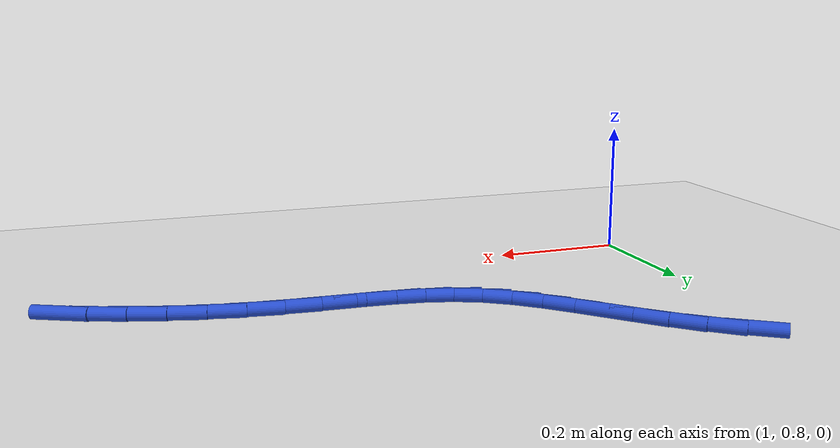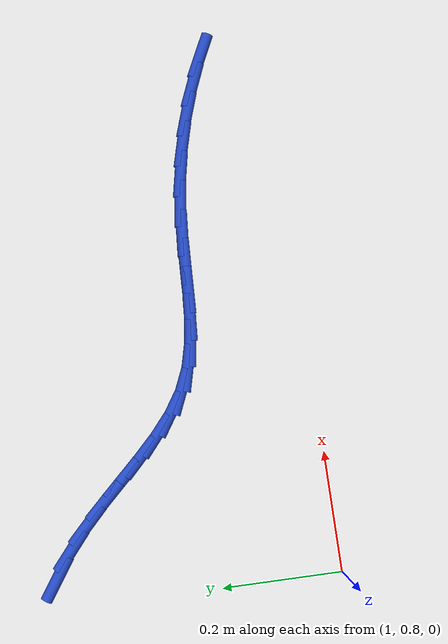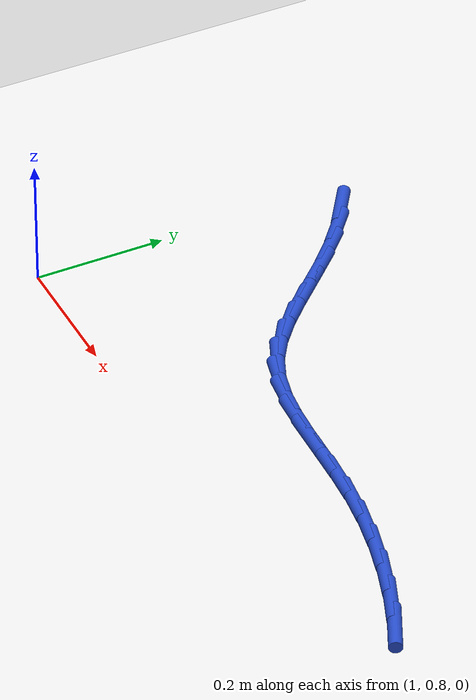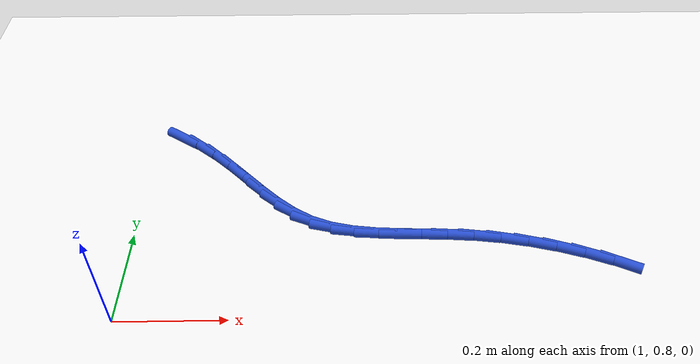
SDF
<sdf version="1.6">
 <world name="default">
  <model name="ground_plane">
   <static>1</static>
   <link name="link">
    <collision name="collision">
     <geometry><plane><normal>0 0 1</normal><size>100 100</size></plane></geometry>
     <surface><friction><ode><mu>100</mu><mu2>50</mu2></ode></friction></surface>
    </collision>
    <visual name="visual">
     <cast_shadows>0</cast_shadows>
     <geometry><plane><normal>0 0 1</normal><size>100 100</size></plane></geometry>
     <material>
      <script><uri>file://media/materials/scripts/gazebo.material</uri><name>Gazebo/WhiteGlow</name></script>
     </material>
    </visual>
   </link>
  </model>
  <model name="line">
   <link name="link_41">
    <pose>1.055373129990146 1.2669109637216691 0.01 0 1.57 -0.5987343801595141</pose>
    <collision name="collision">
     <geometry><cylinder><radius>0.01</radius><length>0.08</length></cylinder></geometry>
    </collision>
    <visual name="visual">
     <material>
      <script><name>Gazebo/Blue</name><uri>file://media/materials/scripts/gazebo.material</uri></script>
     </material>
     <geometry><cylinder><radius>0.01</radius><length>0.08</length></cylinder></geometry>
    </visual>
   </link>
   <link name="link_42">
    <pose>1.0968731021812408 1.2385963448442086 0.01 0 1.57 -0.7028953255629611</pose>
    <collision name="collision">
     <geometry><cylinder><radius>0.01</radius><length>0.08</length></cylinder></geometry>
    </collision>
    <visual name="visual">
     <material>
      <script><name>Gazebo/Blue</name><uri>file://media/materials/scripts/gazebo.material</uri></script>
     </material>
     <geometry><cylinder><radius>0.01</radius><length>0.08</length></cylinder></geometry>
    </visual>
   </link>
   <link name="link_43">
    <pose>1.1343405657984749 1.2068520397617704 0.01 0 1.57 -0.7753192075446043</pose>
    <collision name="collision">
     <geometry><cylinder><radius>0.01</radius><length>0.08</length></cylinder></geometry>
    </collision>
    <visual name="visual">
     <material>
      <script><name>Gazebo/Blue</name><uri>file://media/materials/scripts/gazebo.material</uri></script>
     </material>
     <geometry><cylinder><radius>0.01</radius><length>0.08</length></cylinder></geometry>
    </visual>
   </link>
   <link name="link_44">
    <pose>1.168789889259764 1.1730902365160525 0.01 0 1.57 -0.814150677451299</pose>
    <collision name="collision">
     <geometry><cylinder><radius>0.01</radius><length>0.08</length></cylinder></geometry>
    </collision>
    <visual name="visual">
     <material>
      <script><name>Gazebo/Blue</name><uri>file://media/materials/scripts/gazebo.material</uri></script>
     </material>
     <geometry><cylinder><radius>0.01</radius><length>0.08</length></cylinder></geometry>
    </visual>
   </link>
   <link name="link_45">
    <pose>1.2012354409830235 1.1387231231487531 0.01 0 1.57 -0.817749285158957</pose>
    <collision name="collision">
     <geometry><cylinder><radius>0.01</radius><length>0.08</length></cylinder></geometry>
    </collision>
    <visual name="visual">
     <material>
      <script><name>Gazebo/Blue</name><uri>file://media/materials/scripts/gazebo.material</uri></script>
     </material>
     <geometry><cylinder><radius>0.01</radius><length>0.08</length></cylinder></geometry>
    </visual>
   </link>
   <link name="link_46">
    <pose>1.2326915893861674 1.1051628877015707 0.01 0 1.57 -0.7831705496043173</pose>
    <collision name="collision">
     <geometry><cylinder><radius>0.01</radius><length>0.08</length></cylinder></geometry>
    </collision>
    <visual name="visual">
     <material>
      <script><name>Gazebo/Blue</name><uri>file://media/materials/scripts/gazebo.material</uri></script>
     </material>
     <geometry><cylinder><radius>0.01</radius><length>0.08</length></cylinder></geometry>
    </visual>
   </link>
   <link name="link_47">
    <pose>1.2641727028871113 1.0738217182162029 0.01 0 1.57 -0.705698466199918</pose>
    <collision name="collision">
     <geometry><cylinder><radius>0.01</radius><length>0.08</length></cylinder></geometry>
    </collision>
    <visual name="visual">
     <material>
      <script><name>Gazebo/Blue</name><uri>file://media/materials/scripts/gazebo.material</uri></script>
     </material>
     <geometry><cylinder><radius>0.01</radius><length>0.08</length></cylinder></geometry>
    </visual>
   </link>
   <link name="link_48">
    <pose>1.2966931499037706 1.046111802734349 0.01 0 1.57 -0.5802950338210349</pose>
    <collision name="collision">
     <geometry><cylinder><radius>0.01</radius><length>0.08</length></cylinder></geometry>
    </collision>
    <visual name="visual">
     <material>
      <script><name>Gazebo/Blue</name><uri>file://media/materials/scripts/gazebo.material</uri></script>
     </material>
     <geometry><cylinder><radius>0.01</radius><length>0.08</length></cylinder></geometry>
    </visual>
   </link>
   <link name="link_49">
    <pose>1.3312672988540595 1.0234453292977066 0.01 0 1.57 -0.40958373161698175</pose>
    <collision name="collision">
     <geometry><cylinder><radius>0.01</radius><length>0.08</length></cylinder></geometry>
    </collision>
    <visual name="visual">
     <material>
      <script><name>Gazebo/Blue</name><uri>file://media/materials/scripts/gazebo.material</uri></script>
     </material>
     <geometry><cylinder><radius>0.01</radius><length>0.08</length></cylinder></geometry>
    </visual>
   </link>
   <link name="link_50">
    <pose>1.3688570420879036 1.007126253837911 0.01 0 1.57 -0.2471009292330219</pose>
    <collision name="collision">
     <geometry><cylinder><radius>0.01</radius><length>0.08</length></cylinder></geometry>
    </collision>
    <visual name="visual">
     <material>
      <script><name>Gazebo/Blue</name><uri>file://media/materials/scripts/gazebo.material</uri></script>
     </material>
     <geometry><cylinder><radius>0.01</radius><length>0.08</length></cylinder></geometry>
    </visual>
   </link>
   <link name="link_51">
    <pose>1.4096389353122558 0.9968387721705373 0.01 0 1.57 -0.132835897227499</pose>
    <collision name="collision">
     <geometry><cylinder><radius>0.01</radius><length>0.08</length></cylinder></geometry>
    </collision>
    <visual name="visual">
     <material>
      <script><name>Gazebo/Blue</name><uri>file://media/materials/scripts/gazebo.material</uri></script>
     </material>
     <geometry><cylinder><radius>0.01</radius><length>0.08</length></cylinder></geometry>
    </visual>
   </link>
   <link name="link_52">
    <pose>1.4531849093393314 0.9910200387328647 0.01 0 1.57 -0.06411837149518201</pose>
    <collision name="collision">
     <geometry><cylinder><radius>0.01</radius><length>0.08</length></cylinder></geometry>
    </collision>
    <visual name="visual">
     <material>
      <script><name>Gazebo/Blue</name><uri>file://media/materials/scripts/gazebo.material</uri></script>
     </material>
     <geometry><cylinder><radius>0.01</radius><length>0.08</length></cylinder></geometry>
    </visual>
   </link>
   <link name="link_53">
    <pose>1.4990513378167134 0.9880751212449503 0.01 0 1.57 -0.034881534755693236</pose>
    <collision name="collision">
     <geometry><cylinder><radius>0.01</radius><length>0.08</length></cylinder></geometry>
    </collision>
    <visual name="visual">
     <material>
      <script><name>Gazebo/Blue</name><uri>file://media/materials/scripts/gazebo.material</uri></script>
     </material>
     <geometry><cylinder><radius>0.01</radius><length>0.08</length></cylinder></geometry>
    </visual>
   </link>
   <link name="link_54">
    <pose>1.5467945943919854 0.9864090874268507 0.01 0 1.57 -0.04028370932859828</pose>
    <collision name="collision">
     <geometry><cylinder><radius>0.01</radius><length>0.08</length></cylinder></geometry>
    </collision>
    <visual name="visual">
     <material>
      <script><name>Gazebo/Blue</name><uri>file://media/materials/scripts/gazebo.material</uri></script>
     </material>
     <geometry><cylinder><radius>0.01</radius><length>0.08</length></cylinder></geometry>
    </visual>
   </link>
   <link name="link_55">
    <pose>1.5959710527127318 0.9844270049986226 0.01 0 1.57 -0.07744834632753267</pose>
    <collision name="collision">
     <geometry><cylinder><radius>0.01</radius><length>0.08</length></cylinder></geometry>
    </collision>
    <visual name="visual">
     <material>
      <script><name>Gazebo/Blue</name><uri>file://media/materials/scripts/gazebo.material</uri></script>
     </material>
     <geometry><cylinder><radius>0.01</radius><length>0.08</length></cylinder></geometry>
    </visual>
   </link>
   <link name="link_56">
    <pose>1.6461370864265352 0.9805339416803227 0.01 0 1.57 -0.13969205797044207</pose>
    <collision name="collision">
     <geometry><cylinder><radius>0.01</radius><length>0.08</length></cylinder></geometry>
    </collision>
    <visual name="visual">
     <material>
      <script><name>Gazebo/Blue</name><uri>file://media/materials/scripts/gazebo.material</uri></script>
     </material>
     <geometry><cylinder><radius>0.01</radius><length>0.08</length></cylinder></geometry>
    </visual>
   </link>
   <link name="link_57">
    <pose>1.696846908103053 0.9734037426210439 0.01 0 1.57 -0.2046522275101746</pose>
    <collision name="collision">
     <geometry><cylinder><radius>0.01</radius><length>0.08</length></cylinder></geometry>
    </collision>
    <visual name="visual">
     <material>
      <script><name>Gazebo/Blue</name><uri>file://media/materials/scripts/gazebo.material</uri></script>
     </material>
     <geometry><cylinder><radius>0.01</radius><length>0.08</length></cylinder></geometry>
    </visual>
   </link>
   <link name="link_58">
    <pose>1.7476454851650143 0.9628600897209857 0.01 0 1.57 -0.2675880855610507</pose>
    <collision name="collision">
     <geometry><cylinder><radius>0.01</radius><length>0.08</length></cylinder></geometry>
    </collision>
    <visual name="visual">
     <material>
      <script><name>Gazebo/Blue</name><uri>file://media/materials/scripts/gazebo.material</uri></script>
     </material>
     <geometry><cylinder><radius>0.01</radius><length>0.08</length></cylinder></geometry>
    </visual>
   </link>
   <link name="link_59">
    <pose>1.7980753132442133 0.9490340862851032 0.01 0 1.57 -0.32976162530008307</pose>
    <collision name="collision">
     <geometry><cylinder><radius>0.01</radius><length>0.08</length></cylinder></geometry>
    </collision>
    <visual name="visual">
     <material>
      <script><name>Gazebo/Blue</name><uri>file://media/materials/scripts/gazebo.material</uri></script>
     </material>
     <geometry><cylinder><radius>0.01</radius><length>0.08</length></cylinder></geometry>
    </visual>
   </link>
   <link name="link_60">
    <pose>1.8476788879464745 0.9320568388484122 0.01 0 1.57 -0.3923927622506366</pose>
    <collision name="collision">
     <geometry><cylinder><radius>0.01</radius><length>0.08</length></cylinder></geometry>
    </collision>
    <visual name="visual">
     <material>
      <script><name>Gazebo/Blue</name><uri>file://media/materials/scripts/gazebo.material</uri></script>
     </material>
     <geometry><cylinder><radius>0.01</radius><length>0.08</length></cylinder></geometry>
    </visual>
   </link>
   <link name="link_61">
    <pose>1.8959987048776235 0.9120594539459299 0.01 0 1.57 -0.4567044370363693</pose>
    <collision name="collision">
     <geometry><cylinder><radius>0.01</radius><length>0.08</length></cylinder></geometry>
    </collision>
    <visual name="visual">
     <material>
      <script><name>Gazebo/Blue</name><uri>file://media/materials/scripts/gazebo.material</uri></script>
     </material>
     <geometry><cylinder><radius>0.01</radius><length>0.08</length></cylinder></geometry>
    </visual>
   </link>
  </model>
 </world>
</sdf>
